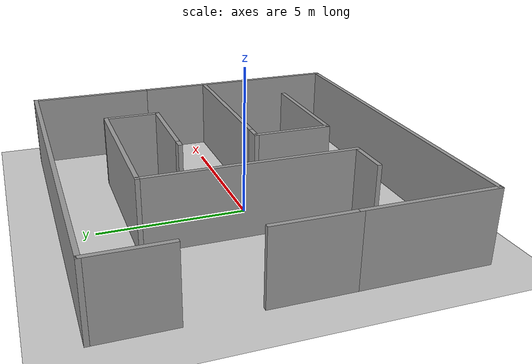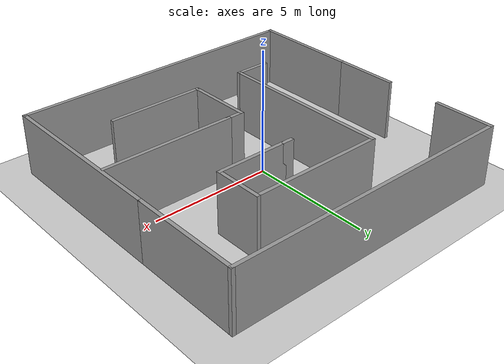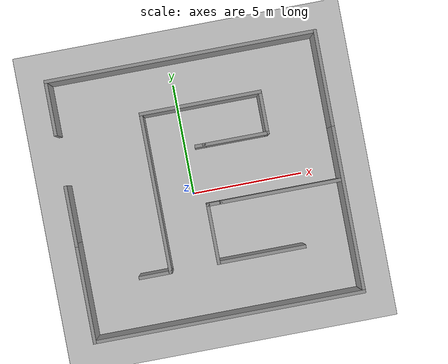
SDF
<?xml version="1.0"?>
<sdf version="1.4">
  <world name="default">

    <include>
      <uri>model://sun</uri>
    </include>
    <include>
      <uri>model://ground_plane</uri>
    </include>
    <model name='maze'>
    <pose>0.555928 0.207268 0 0 -0 0</pose>
    <link name='Wall_0'>
      <collision name='Wall_0_Collision'>
        <geometry>
          <box>
            <size>2.75 0.15 2.5</size>
          </box>
        </geometry>
        <pose>0 0 1.25 0 -0 0</pose>
      </collision>
      <visual name='Wall_0_Visual'>
        <pose>0 0 1.25 0 -0 0</pose>
        <geometry>
          <box>
            <size>2.75 0.15 2.5</size>
          </box>
        </geometry>
        <material>
          <script>
            <uri>file://media/materials/scripts/gazebo.material</uri>
            <name>Gazebo/Grey</name>
          </script>
          <ambient>1 1 1 1</ambient>
        </material>
        <meta>
          <layer>0</layer>
        </meta>
      </visual>
      <pose>-6.05 -0.2 0 0 -0 -1.5708</pose>
    </link>
    <link name='Wall_1'>
      <collision name='Wall_1_Collision'>
        <geometry>
          <box>
            <size>4.5 0.15 2.5</size>
          </box>
        </geometry>
        <pose>0 0 1.25 0 -0 0</pose>
      </collision>
      <visual name='Wall_1_Visual'>
        <pose>0 0 1.25 0 -0 0</pose>
        <geometry>
          <box>
            <size>4.5 0.15 2.5</size>
          </box>
        </geometry>
        <material>
          <script>
            <uri>file://media/materials/scripts/gazebo.material</uri>
            <name>Gazebo/Grey</name>
          </script>
          <ambient>1 1 1 1</ambient>
        </material>
        <meta>
          <layer>0</layer>
        </meta>
      </visual>
      <pose>-6.05 -3.675 0 0 -0 -1.5708</pose>
    </link>
    <link name='Wall_11'>
      <collision name='Wall_11_Collision'>
        <geometry>
          <box>
            <size>3 0.15 2.5</size>
          </box>
        </geometry>
        <pose>0 0 1.25 0 -0 0</pose>
      </collision>
      <visual name='Wall_11_Visual'>
        <pose>0 0 1.25 0 -0 0</pose>
        <geometry>
          <box>
            <size>3 0.15 2.5</size>
          </box>
        </geometry>
        <material>
          <script>
            <uri>file://media/materials/scripts/gazebo.material</uri>
            <name>Gazebo/Grey</name>
          </script>
          <ambient>1 1 1 1</ambient>
        </material>
        <meta>
          <layer>0</layer>
        </meta>
      </visual>
      <pose>1.73981 1.81749 0 0 -0 0</pose>
    </link>
    <link name='Wall_12'>
      <collision name='Wall_12_Collision'>
        <geometry>
          <box>
            <size>2 0.15 2.5</size>
          </box>
        </geometry>
        <pose>0 0 1.25 0 -0 0</pose>
      </collision>
      <visual name='Wall_12_Visual'>
        <pose>0 0 1.25 0 -0 0</pose>
        <geometry>
          <box>
            <size>2 0.15 2.5</size>
          </box>
        </geometry>
        <material>
          <script>
            <uri>file://media/materials/scripts/gazebo.material</uri>
            <name>Gazebo/Grey</name>
          </script>
          <ambient>1 1 1 1</ambient>
        </material>
        <meta>
          <layer>0</layer>
        </meta>
      </visual>
      <pose>3.16482 2.74249 0 0 -0 1.5708</pose>
    </link>
    <link name='Wall_13'>
      <collision name='Wall_13_Collision'>
        <geometry>
          <box>
            <size>5.5 0.15 2.5</size>
          </box>
        </geometry>
        <pose>0 0 1.25 0 -0 0</pose>
      </collision>
      <visual name='Wall_13_Visual'>
        <pose>0 0 1.25 0 -0 0</pose>
        <geometry>
          <box>
            <size>5.5 0.15 2.5</size>
          </box>
        </geometry>
        <material>
          <script>
            <uri>file://media/materials/scripts/gazebo.material</uri>
            <name>Gazebo/Grey</name>
          </script>
          <ambient>1 1 1 1</ambient>
        </material>
        <meta>
          <layer>0</layer>
        </meta>
      </visual>
      <pose>0.489816 3.66749 0 0 -0 3.14159</pose>
    </link>
    <link name='Wall_14'>
      <collision name='Wall_14_Collision'>
        <geometry>
          <box>
            <size>7.25 0.15 2.5</size>
          </box>
        </geometry>
        <pose>0 0 1.25 0 -0 0</pose>
      </collision>
      <visual name='Wall_14_Visual'>
        <pose>0 0 1.25 0 -0 0</pose>
        <geometry>
          <box>
            <size>7.25 0.15 2.5</size>
          </box>
        </geometry>
        <material>
          <script>
            <uri>file://media/materials/scripts/gazebo.material</uri>
            <name>Gazebo/Grey</name>
          </script>
          <ambient>1 1 1 1</ambient>
        </material>
        <meta>
          <layer>0</layer>
        </meta>
      </visual>
      <pose>-2.18518 0.117494 0 0 -0 -1.5708</pose>
    </link>
    <link name='Wall_16'>
      <collision name='Wall_16_Collision'>
        <geometry>
          <box>
            <size>0.75 0.15 2.5</size>
          </box>
        </geometry>
        <pose>0 0 1.25 0 -0 0</pose>
      </collision>
      <visual name='Wall_16_Visual'>
        <pose>0 0 1.25 0 -0 0</pose>
        <geometry>
          <box>
            <size>0.75 0.15 2.5</size>
          </box>
        </geometry>
        <material>
          <script>
            <uri>file://media/materials/scripts/gazebo.material</uri>
            <name>Gazebo/Grey</name>
          </script>
          <ambient>1 1 1 1</ambient>
        </material>
        <meta>
          <layer>0</layer>
        </meta>
      </visual>
      <pose>0.280818 -0.815926 0 0 -0 3.14159</pose>
    </link>
    <link name='Wall_18'>
      <collision name='Wall_18_Collision'>
        <geometry>
          <box>
            <size>0.5 0.15 2.5</size>
          </box>
        </geometry>
        <pose>0 0 1.25 0 -0 0</pose>
      </collision>
      <visual name='Wall_18_Visual'>
        <pose>0 0 1.25 0 -0 0</pose>
        <geometry>
          <box>
            <size>0.5 0.15 2.5</size>
          </box>
        </geometry>
        <material>
          <script>
            <uri>file://media/materials/scripts/gazebo.material</uri>
            <name>Gazebo/Grey</name>
          </script>
          <ambient>1 1 1 1</ambient>
        </material>
        <meta>
          <layer>0</layer>
        </meta>
      </visual>
      <pose>0.139816 1.81749 0 0 -0 3.14159</pose>
    </link>
    <link name='Wall_2'>
      <collision name='Wall_2_Collision'>
        <geometry>
          <box>
            <size>12.25 0.15 2.5</size>
          </box>
        </geometry>
        <pose>0 0 1.25 0 -0 0</pose>
      </collision>
      <visual name='Wall_2_Visual'>
        <pose>0 0 1.25 0 -0 0</pose>
        <geometry>
          <box>
            <size>12.25 0.15 2.5</size>
          </box>
        </geometry>
        <material>
          <script>
            <uri>file://media/materials/scripts/gazebo.material</uri>
            <name>Gazebo/Grey</name>
          </script>
          <ambient>1 1 1 1</ambient>
        </material>
        <meta>
          <layer>0</layer>
        </meta>
      </visual>
      <pose>-0 -5.85 0 0 -0 0</pose>
    </link>
    <link name='Wall_20'>
      <collision name='Wall_20_Collision'>
        <geometry>
          <box>
            <size>2.75 0.15 2.5</size>
          </box>
        </geometry>
        <pose>0 0 1.25 0 -0 0</pose>
      </collision>
      <visual name='Wall_20_Visual'>
        <pose>0 0 1.25 0 -0 0</pose>
        <geometry>
          <box>
            <size>2.75 0.15 2.5</size>
          </box>
        </geometry>
        <material>
          <script>
            <uri>file://media/materials/scripts/gazebo.material</uri>
            <name>Gazebo/Grey</name>
          </script>
          <ambient>1 1 1 1</ambient>
        </material>
        <meta>
          <layer>0</layer>
        </meta>
      </visual>
      <pose>-0.019182 -2.11593 0 0 -0 -1.5708</pose>
    </link>
    <link name='Wall_21'>
      <collision name='Wall_21_Collision'>
        <geometry>
          <box>
            <size>4 0.15 2.5</size>
          </box>
        </geometry>
        <pose>0 0 1.25 0 -0 0</pose>
      </collision>
      <visual name='Wall_21_Visual'>
        <pose>0 0 1.25 0 -0 0</pose>
        <geometry>
          <box>
            <size>4 0.15 2.5</size>
          </box>
        </geometry>
        <material>
          <script>
            <uri>file://media/materials/scripts/gazebo.material</uri>
            <name>Gazebo/Grey</name>
          </script>
          <ambient>1 1 1 1</ambient>
        </material>
        <meta>
          <layer>0</layer>
        </meta>
      </visual>
      <pose>1.90582 -3.41593 0 0 -0 0</pose>
    </link>
    <link name='Wall_23'>
      <collision name='Wall_23_Collision'>
        <geometry>
          <box>
            <size>1.5 0.15 2.5</size>
          </box>
        </geometry>
        <pose>0 0 1.25 0 -0 0</pose>
      </collision>
      <visual name='Wall_23_Visual'>
        <pose>0 0 1.25 0 -0 0</pose>
        <geometry>
          <box>
            <size>1.5 0.15 2.5</size>
          </box>
        </geometry>
        <material>
          <script>
            <uri>file://media/materials/scripts/gazebo.material</uri>
            <name>Gazebo/Grey</name>
          </script>
          <ambient>1 1 1 1</ambient>
        </material>
        <meta>
          <layer>0</layer>
        </meta>
      </visual>
      <pose>-2.86018 -3.43251 0 0 -0 3.14159</pose>
    </link>
    <link name='Wall_3'>
      <collision name='Wall_3_Collision'>
        <geometry>
          <box>
            <size>7.5 0.15 2.5</size>
          </box>
        </geometry>
        <pose>0 0 1.25 0 -0 0</pose>
      </collision>
      <visual name='Wall_3_Visual'>
        <pose>0 0 1.25 0 -0 0</pose>
        <geometry>
          <box>
            <size>7.5 0.15 2.5</size>
          </box>
        </geometry>
        <material>
          <script>
            <uri>file://media/materials/scripts/gazebo.material</uri>
            <name>Gazebo/Grey</name>
          </script>
          <ambient>1 1 1 1</ambient>
        </material>
        <meta>
          <layer>0</layer>
        </meta>
      </visual>
      <pose>6.05 -2.175 0 0 -0 1.5708</pose>
    </link>
    <link name='Wall_5'>
      <collision name='Wall_5_Collision'>
        <geometry>
          <box>
            <size>4.5 0.15 2.5</size>
          </box>
        </geometry>
        <pose>0 0 1.25 0 -0 0</pose>
      </collision>
      <visual name='Wall_5_Visual'>
        <pose>0 0 1.25 0 -0 0</pose>
        <geometry>
          <box>
            <size>4.5 0.15 2.5</size>
          </box>
        </geometry>
        <material>
          <script>
            <uri>file://media/materials/scripts/gazebo.material</uri>
            <name>Gazebo/Grey</name>
          </script>
          <ambient>1 1 1 1</ambient>
        </material>
        <meta>
          <layer>0</layer>
        </meta>
      </visual>
      <pose>6.05 3.675 0 0 -0 1.5708</pose>
    </link>
    <link name='Wall_6'>
      <collision name='Wall_6_Collision'>
        <geometry>
          <box>
            <size>12.25 0.15 2.5</size>
          </box>
        </geometry>
        <pose>0 0 1.25 0 -0 0</pose>
      </collision>
      <visual name='Wall_6_Visual'>
        <pose>0 0 1.25 0 -0 0</pose>
        <geometry>
          <box>
            <size>12.25 0.15 2.5</size>
          </box>
        </geometry>
        <material>
          <script>
            <uri>file://media/materials/scripts/gazebo.material</uri>
            <name>Gazebo/Grey</name>
          </script>
          <ambient>1 1 1 1</ambient>
        </material>
        <meta>
          <layer>0</layer>
        </meta>
      </visual>
      <pose>-0 5.85 0 0 -0 3.14159</pose>
    </link>
    <link name='Wall_7'>
      <collision name='Wall_7_Collision'>
        <geometry>
          <box>
            <size>2.5 0.15 2.5</size>
          </box>
        </geometry>
        <pose>0 0 1.25 0 -0 0</pose>
      </collision>
      <visual name='Wall_7_Visual'>
        <pose>0 0 1.25 0 -0 0</pose>
        <geometry>
          <box>
            <size>2.5 0.15 2.5</size>
          </box>
        </geometry>
        <material>
          <script>
            <uri>file://media/materials/scripts/gazebo.material</uri>
            <name>Gazebo/Grey</name>
          </script>
          <ambient>1 1 1 1</ambient>
        </material>
        <meta>
          <layer>0</layer>
        </meta>
      </visual>
      <pose>-6.05 4.675 0 0 -0 -1.5708</pose>
    </link>
    <link name='Wall_9'>
      <collision name='Wall_9_Collision'>
        <geometry>
          <box>
            <size>5.5 0.15 2.5</size>
          </box>
        </geometry>
        <pose>0 0 1.25 0 -0 0</pose>
      </collision>
      <visual name='Wall_9_Visual'>
        <pose>0 0 1.25 0 -0 0</pose>
        <geometry>
          <box>
            <size>5.5 0.15 2.5</size>
          </box>
        </geometry>
        <material>
          <script>
            <uri>file://media/materials/scripts/gazebo.material</uri>
            <name>Gazebo/Grey</name>
          </script>
          <ambient>1 1 1 1</ambient>
        </material>
        <meta>
          <layer>0</layer>
        </meta>
      </visual>
      <pose>3.25582 -0.815926 0 0 -0 0</pose>
    </link>
    <static>1</static>
  </model>

    <physics type="ode">
      <real_time_update_rate>1000.0</real_time_update_rate>
      <max_step_size>0.001</max_step_size>
      <real_time_factor>1</real_time_factor>
      <ode>
        <solver>
          <type>quick</type>
          <iters>150</iters>
          <precon_iters>0</precon_iters>
          <sor>1.400000</sor>
          <use_dynamic_moi_rescaling>1</use_dynamic_moi_rescaling>
        </solver>
        <constraints>
          <cfm>0.00001</cfm>
          <erp>0.2</erp>
          <contact_max_correcting_vel>2000.000000</contact_max_correcting_vel>
          <contact_surface_layer>0.01000</contact_surface_layer>
        </constraints>
      </ode>
    </physics>
  </world>
</sdf>
